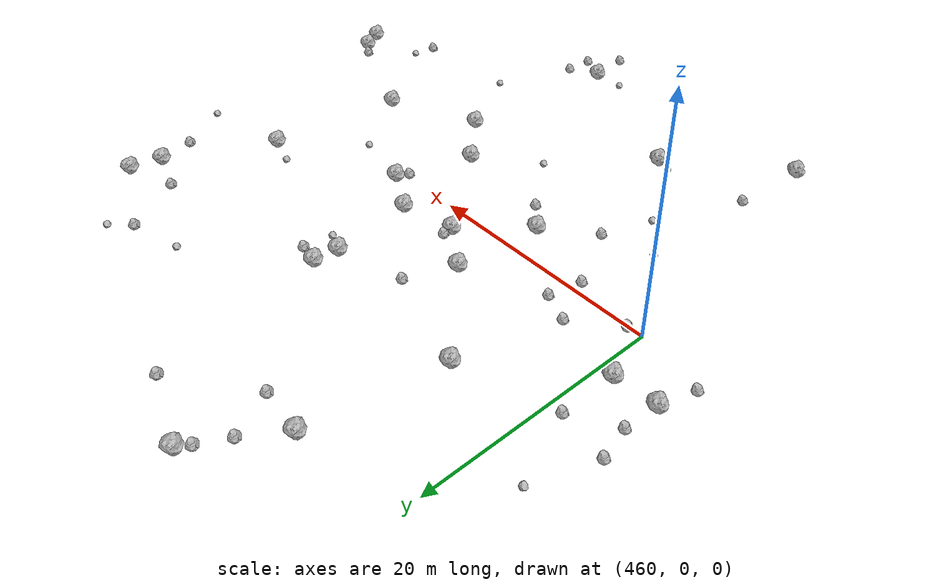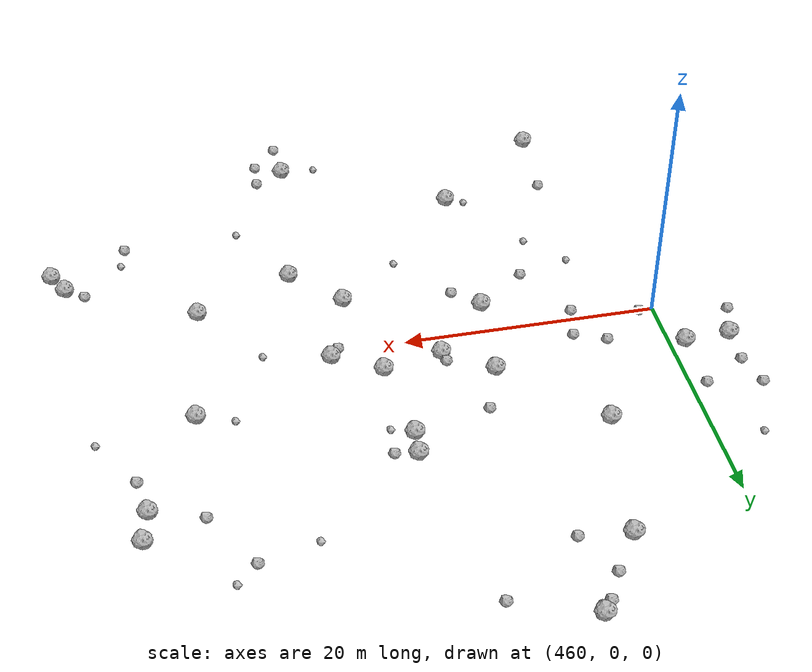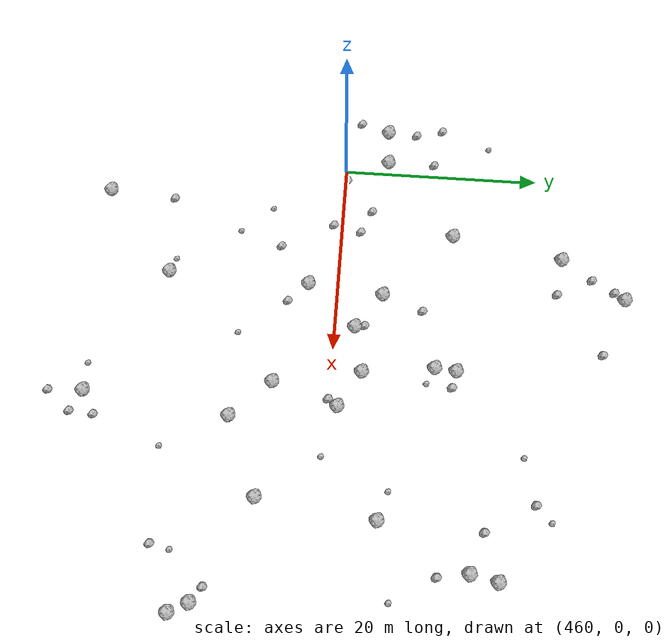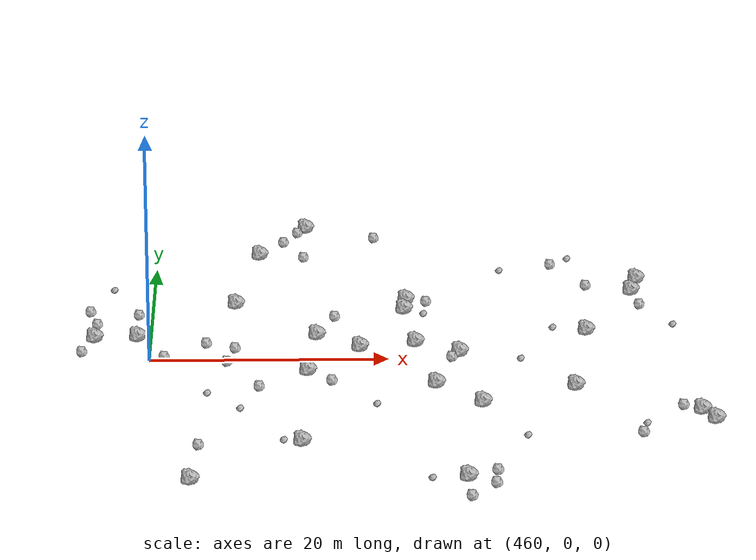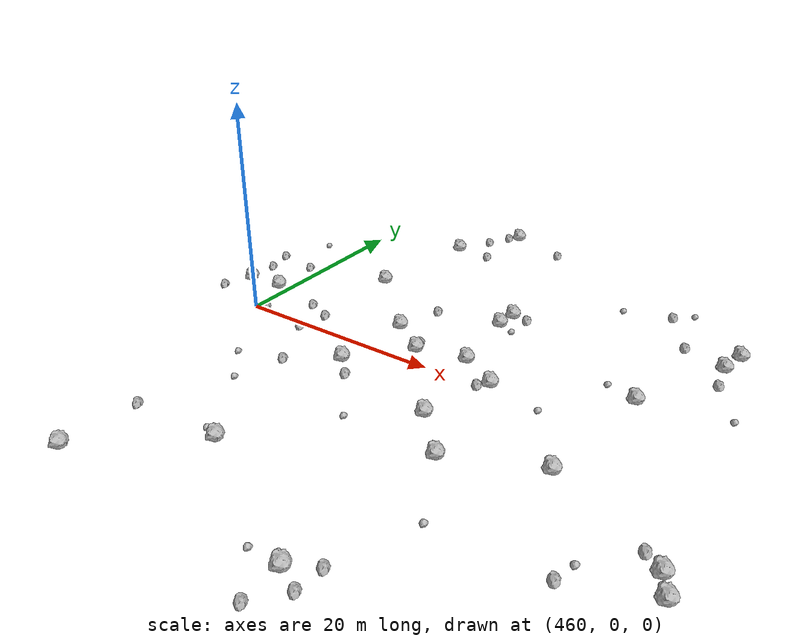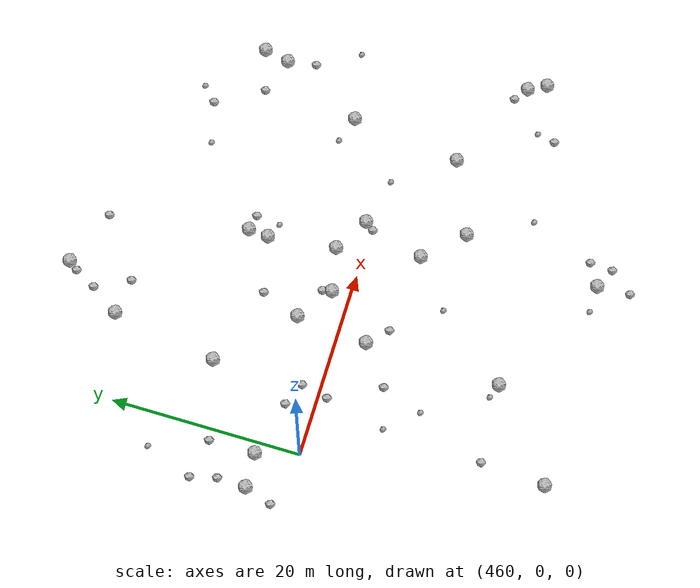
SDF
<sdf version="1.6">
 <world name="default">
  <include><uri>model://sun</uri></include>
  <model name="rock1_12_4">
   <include><uri>model://rock1</uri><pose>501.7521377849959 16.72139369367627 0.5 0 0 0</pose></include>
  </model>
  <model name="rock1_12_5">
   <include><uri>model://rock1</uri><pose>485.99764523406424 -24.105082122897414 0.5 0 0 0</pose></include>
  </model>
  <model name="rock1_12_6">
   <include><uri>model://rock1</uri><pose>477.62893587610597 1.9749157406228264 0.5 0 0 0</pose></include>
  </model>
  <model name="rock1_12_7">
   <include><uri>model://rock1</uri><pose>468.96015437280766 22.64344130970943 0.5 0 0 0</pose></include>
  </model>
  <model name="rock1_12_8">
   <include><uri>model://rock1</uri><pose>472.84628194978916 -17.21973932154672 0.5 0 0 0</pose></include>
  </model>
  <model name="rock1_12_9">
   <include><uri>model://rock1</uri><pose>455.25177961186006 4.22677094471171 0.5 0 0 0</pose></include>
  </model>
  <model name="rock1_12_10">
   <include><uri>model://rock1</uri><pose>496.8271685570392 5.268112355928075 0.5 0 0 0</pose></include>
  </model>
  <model name="rock1_12_11">
   <include><uri>model://rock1</uri><pose>474.0052628359738 4.578403935095054 0.5 0 0 0</pose></include>
  </model>
  <model name="rock1_12_12">
   <include><uri>model://rock1</uri><pose>495.3706559929397 -6.374767105074454 0.5 0 0 0</pose></include>
  </model>
  <model name="rock1_12_13">
   <include><uri>model://rock1</uri><pose>482.3091893192046 2.949266318962664 0.5 0 0 0</pose></include>
  </model>
  <model name="rock1_12_14">
   <include><uri>model://rock1</uri><pose>506.4087868383899 -13.254868299765587 0.5 0 0 0</pose></include>
  </model>
  <model name="rock1_12_15">
   <include><uri>model://rock1</uri><pose>483.88401365542836 -5.738324390152268 0.5 0 0 0</pose></include>
  </model>
  <model name="rock1_12_16">
   <include><uri>model://rock1</uri><pose>467.0505371276822 11.46981762887814 0.5 0 0 0</pose></include>
  </model>
  <model name="rock1_12_17">
   <include><uri>model://rock1</uri><pose>464.0351865731887 -24.420719630464934 0.5 0 0 0</pose></include>
  </model>
  <model name="rock1_12_18">
   <include><uri>model://rock1</uri><pose>472.9789007690105 28.973484850124123 0.5 0 0 0</pose></include>
  </model>
  <model name="rock1_12_19">
   <include><uri>model://rock1</uri><pose>481.4574589527967 10.113339397239528 0.5 0 0 0</pose></include>
  </model>
  <model name="rock1_12_20">
   <include><uri>model://rock1</uri><pose>505.4163227155629 -11.382603100385506 0.5 0 0 0</pose></include>
  </model>
  <model name="rock1_12_21">
   <include><uri>model://rock1</uri><pose>501.16910472005367 14.0600833136169 0.5 0 0 0</pose></include>
  </model>
  <model name="rock1_12_22">
   <include><uri>model://rock1</uri><pose>458.8667968176398 4.39914482500123 0.5 0 0 0</pose></include>
  </model>
  <model name="rock1_12_23">
   <include><uri>model://rock1</uri><pose>487.61074310375164 -9.655676130963126 0.5 0 0 0</pose></include>
  </model>
  <model name="rock1_12_24">
   <include><uri>model://rock1</uri><pose>485.97736539109223 0.7819598119223805 0.5 0 0 0</pose></include>
  </model>
  <model name="rock1_12_25">
   <include><uri>model://rock1</uri><pose>481.6524710992597 12.237653274749121 0.5 0 0 0</pose></include>
  </model>
  <model name="rock1_12_26">
   <include><uri>model://rock1</uri><pose>473.2672913141297 -2.987837580467648 0.5 0 0 0</pose></include>
  </model>
  <model name="rock2_12_0">
   <include><uri>model://rock2</uri><pose>478.9821791863469 26.711716020644275 0.3 0 0 0</pose></include>
  </model>
  <model name="rock2_12_1">
   <include><uri>model://rock2</uri><pose>464.67830879546204 3.0104164419980393 0.3 0 0 0</pose></include>
  </model>
  <model name="rock2_12_2">
   <include><uri>model://rock2</uri><pose>494.3853984426159 20.199290074124903 0.3 0 0 0</pose></include>
  </model>
  <model name="rock2_12_3">
   <include><uri>model://rock2</uri><pose>503.92207480469034 -10.33082346567291 0.3 0 0 0</pose></include>
  </model>
  <model name="rock2_12_4">
   <include><uri>model://rock2</uri><pose>485.266017710325 -0.13050887432804714 0.3 0 0 0</pose></include>
  </model>
  <model name="rock2_12_5">
   <include><uri>model://rock2</uri><pose>467.1077475293981 1.9723398791027762 0.3 0 0 0</pose></include>
  </model>
  <model name="rock2_12_6">
   <include><uri>model://rock2</uri><pose>475.4816809106853 8.695668328179963 0.3 0 0 0</pose></include>
  </model>
  <model name="rock2_12_7">
   <include><uri>model://rock2</uri><pose>475.2246287980172 -4.910544108232763 0.3 0 0 0</pose></include>
  </model>
  <model name="rock2_12_8">
   <include><uri>model://rock2</uri><pose>501.6505975788675 11.048818155331226 0.3 0 0 0</pose></include>
  </model>
  <model name="rock2_12_9">
   <include><uri>model://rock2</uri><pose>488.1457299060394 -25.170061935555044 0.3 0 0 0</pose></include>
  </model>
  <model name="rock2_12_10">
   <include><uri>model://rock2</uri><pose>500.32298707865687 -15.684880039090705 0.3 0 0 0</pose></include>
  </model>
  <model name="rock2_12_11">
   <include><uri>model://rock2</uri><pose>483.3299442279143 11.914133411424352 0.3 0 0 0</pose></include>
  </model>
  <model name="rock2_12_12">
   <include><uri>model://rock2</uri><pose>461.20596900944616 0.20700356149949783 0.3 0 0 0</pose></include>
  </model>
  <model name="rock2_12_13">
   <include><uri>model://rock2</uri><pose>454.63704723900423 9.977562986881452 0.3 0 0 0</pose></include>
  </model>
  <model name="rock2_12_14">
   <include><uri>model://rock2</uri><pose>486.14159554362146 -27.57330282275071 0.3 0 0 0</pose></include>
  </model>
  <model name="rock2_12_15">
   <include><uri>model://rock2</uri><pose>466.4757678274926 -0.8574988665681467 0.3 0 0 0</pose></include>
  </model>
  <model name="rock2_12_16">
   <include><uri>model://rock2</uri><pose>464.4946347432996 -17.676121088866857 0.3 0 0 0</pose></include>
  </model>
  <model name="rock2_12_17">
   <include><uri>model://rock2</uri><pose>488.3213294170181 -22.78319383983789 0.3 0 0 0</pose></include>
  </model>
  <model name="rock2_12_18">
   <include><uri>model://rock2</uri><pose>477.4166996809545 2.9588161904550887 0.3 0 0 0</pose></include>
  </model>
  <model name="rock2_12_19">
   <include><uri>model://rock2</uri><pose>469.22577970958133 -6.063501484371386 0.3 0 0 0</pose></include>
  </model>
  <model name="rock2_12_20">
   <include><uri>model://rock2</uri><pose>497.25223660788015 15.371902091571364 0.3 0 0 0</pose></include>
  </model>
  <model name="rock2_12_21">
   <include><uri>model://rock2</uri><pose>472.2087383223945 28.00107874255348 0.3 0 0 0</pose></include>
  </model>
  <model name="rock2_12_22">
   <include><uri>model://rock2</uri><pose>472.7798031196209 22.197151046319384 0.3 0 0 0</pose></include>
  </model>
  <model name="rock2_12_23">
   <include><uri>model://rock2</uri><pose>458.81059597435643 9.235173806576498 0.3 0 0 0</pose></include>
  </model>
  <model name="rock2_12_24">
   <include><uri>model://rock2</uri><pose>455.33219606570776 7.253234338640851 0.3 0 0 0</pose></include>
  </model>
  <model name="rock2_12_25">
   <include><uri>model://rock2</uri><pose>470.9964493621841 25.741784563567208 0.3 0 0 0</pose></include>
  </model>
  <model name="rock2_12_26">
   <include><uri>model://rock2</uri><pose>454.26950378099644 1.3487072109691098 0.3 0 0 0</pose></include>
  </model>
  <model name="rock3_12_0">
   <include><uri>model://rock3</uri><pose>504.2248398694768 6.717276875182975 0.2 0 0 0</pose></include>
  </model>
  <model name="rock3_12_1">
   <include><uri>model://rock3</uri><pose>464.96155547256006 -7.276713494760632 0.2 0 0 0</pose></include>
  </model>
  <model name="rock3_12_2">
   <include><uri>model://rock3</uri><pose>471.33275599106 -16.705731706079092 0.2 0 0 0</pose></include>
  </model>
  <model name="rock3_12_3">
   <include><uri>model://rock3</uri><pose>490.9873085334352 -16.03722623012255 0.2 0 0 0</pose></include>
  </model>
  <model name="rock3_12_4">
   <include><uri>model://rock3</uri><pose>456.4585342734039 14.961005556577128 0.2 0 0 0</pose></include>
  </model>
  <model name="rock3_12_5">
   <include><uri>model://rock3</uri><pose>483.11765852315017 -24.091228496565307 0.2 0 0 0</pose></include>
  </model>
  <model name="rock3_12_6">
   <include><uri>model://rock3</uri><pose>491.02323163977286 -0.43126373318083466 0.2 0 0 0</pose></include>
  </model>
  <model name="rock3_12_7">
   <include><uri>model://rock3</uri><pose>483.05725717228387 9.353304299416244 0.2 0 0 0</pose></include>
  </model>
  <model name="rock3_12_8">
   <include><uri>model://rock3</uri><pose>467.729950206271 -10.406338918968515 0.2 0 0 0</pose></include>
  </model>
  <model name="rock3_12_9">
   <include><uri>model://rock3</uri><pose>489.8837968216649 19.00854563404488 0.2 0 0 0</pose></include>
  </model>
  <model name="rock3_12_10">
   <include><uri>model://rock3</uri><pose>493.9782453454831 6.174006870214761 0.2 0 0 0</pose></include>
  </model>
  <model name="rock3_12_11">
   <include><uri>model://rock3</uri><pose>478.9043691135022 -9.632342430432729 0.2 0 0 0</pose></include>
  </model>
  <model name="rock3_12_12">
   <include><uri>model://rock3</uri><pose>495.94671884773146 21.67405205387802 0.2 0 0 0</pose></include>
  </model>
  <model name="rock3_12_13">
   <include><uri>model://rock3</uri><pose>500.7402959993605 -13.799921385015772 0.2 0 0 0</pose></include>
  </model>
 </world>
</sdf>
